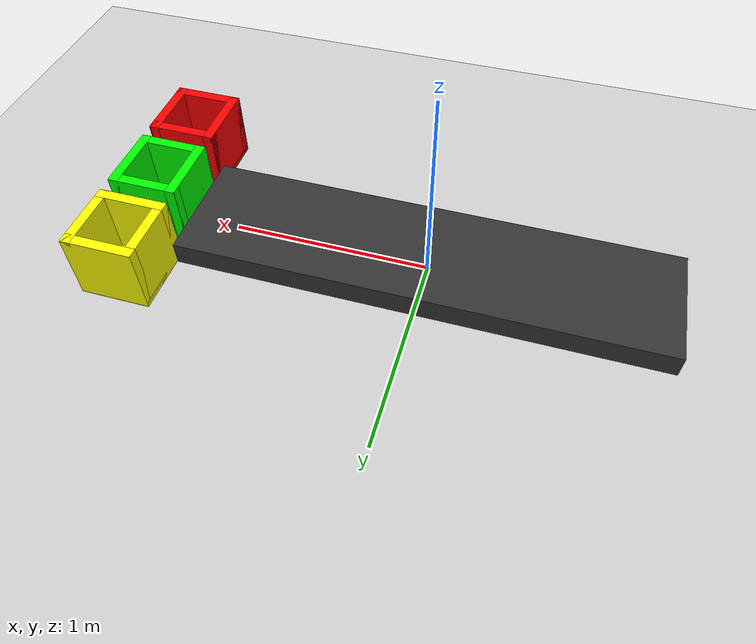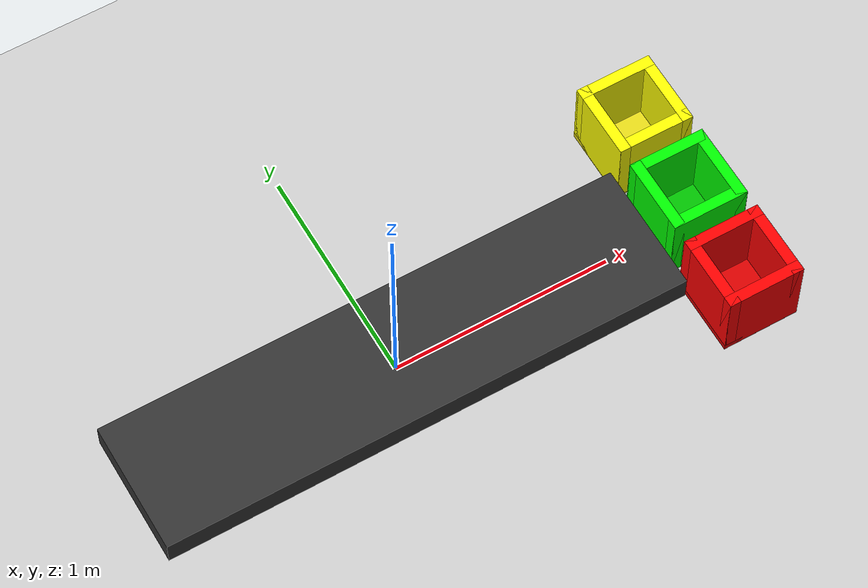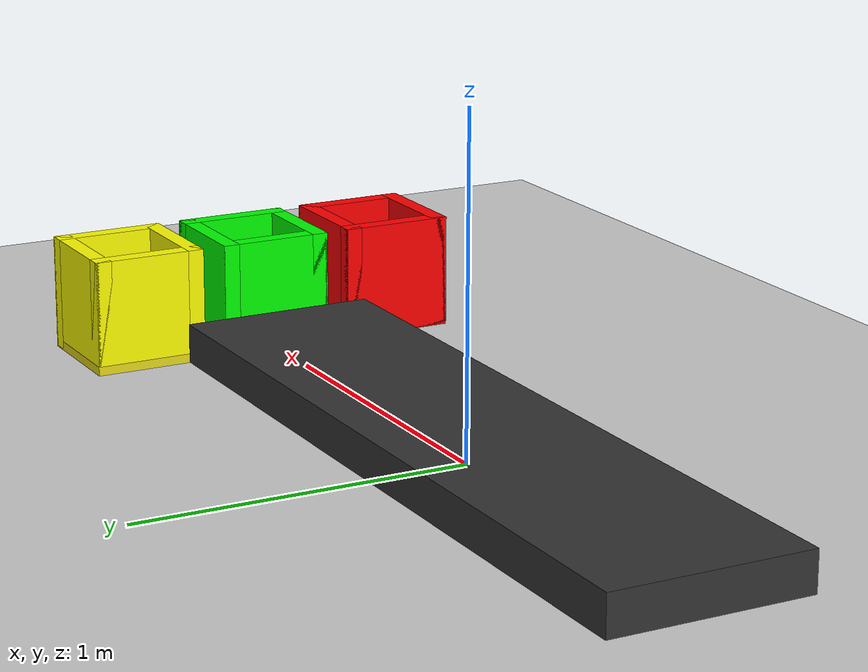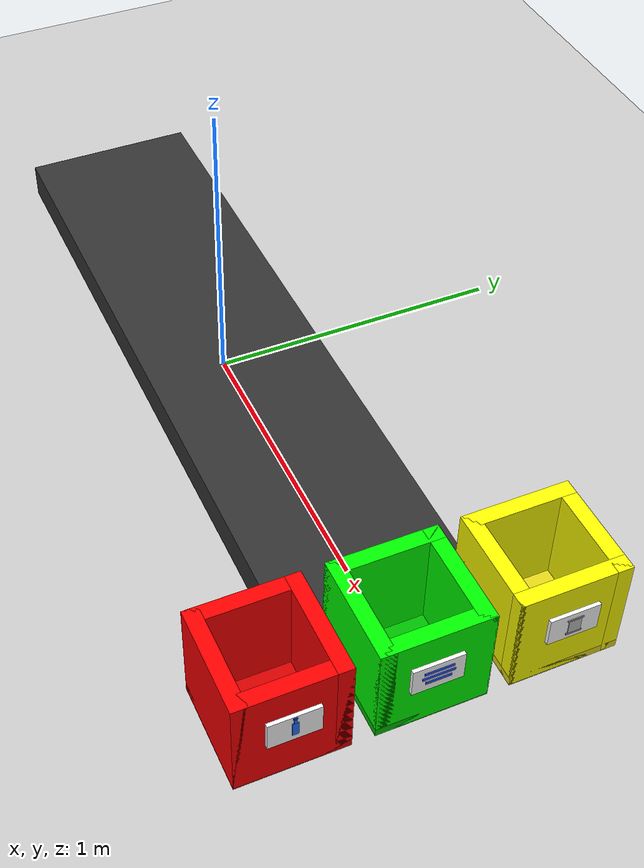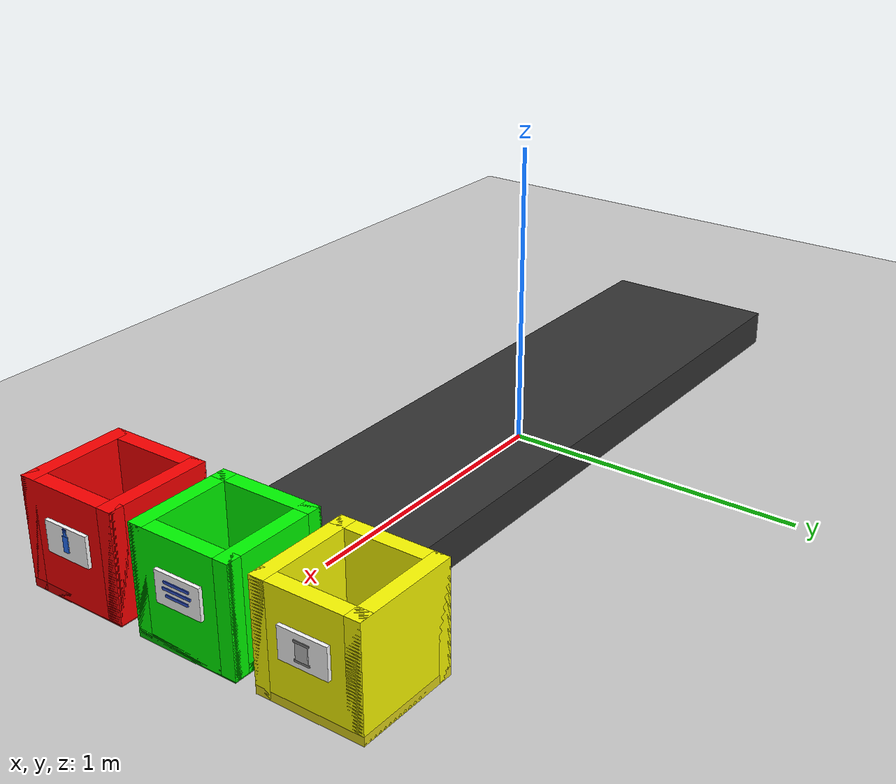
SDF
<?xml version="1.0" ?>
<sdf version="1.6">
  <world name="default">

    <include>
      <uri>model://ground_plane</uri>
    </include>

    <include>
      <uri>model://sun</uri>
    </include>

    <physics type="ode">
      <gravity>0 0 -9.8</gravity>
      <max_step_size>0.001</max_step_size>
      <real_time_factor>1</real_time_factor>
      <real_time_update_rate>1000</real_time_update_rate>
    </physics>

    <!-- Conveyor -->
    <model name="ws_conveyor_belt">
      <static>true</static>
      <pose>0 0 0.06 0 0 0</pose>

      <link name="belt">
        <collision name="collision">
          <geometry>
            <box>
              <size>2.4 0.6 0.12</size>
            </box>
          </geometry>
        </collision>

        <visual name="visual">
          <geometry>
            <box>
              <size>2.4 0.6 0.12</size>
            </box>
          </geometry>
          <material>
            <ambient>0.2 0.2 0.2 1</ambient>
            <diffuse>0.2 0.2 0.2 1</diffuse>
          </material>
        </visual>
      </link>

      <plugin name="conveyor_motion_plugin" filename="libconveyor_motion_plugin.so">
        <belt_center>0 0 0.18</belt_center>
        <belt_size>2.4 0.6 0.12</belt_size>
        <belt_speed>0.22</belt_speed>
        <top_margin>0.20</top_margin>
        <min_object_z>0.11</min_object_z>
      </plugin>
    </model>

    <!-- RED BIN : plastic -->
    <model name="trash_bin_red">
      <static>true</static>
      <pose>1.38 -0.42 0 0 0 0</pose>

      <link name="base">
        <collision name="base_collision">
          <geometry>
            <box><size>0.35 0.35 0.05</size></box>
          </geometry>
        </collision>
        <visual name="base_visual">
          <geometry>
            <box><size>0.35 0.35 0.05</size></box>
          </geometry>
          <material>
            <ambient>0.85 0.0 0.0 1</ambient>
            <diffuse>0.85 0.0 0.0 1</diffuse>
          </material>
        </visual>
      </link>

      <link name="wall_left">
        <pose>0 -0.15 0.175 0 0 0</pose>
        <collision name="collision">
          <geometry><box><size>0.35 0.05 0.35</size></box></geometry>
        </collision>
        <visual name="visual">
          <geometry><box><size>0.35 0.05 0.35</size></box></geometry>
          <material>
            <ambient>1 0 0 1</ambient>
            <diffuse>1 0 0 1</diffuse>
          </material>
        </visual>
      </link>

      <link name="wall_right">
        <pose>0 0.15 0.175 0 0 0</pose>
        <collision name="collision">
          <geometry><box><size>0.35 0.05 0.35</size></box></geometry>
        </collision>
        <visual name="visual">
          <geometry><box><size>0.35 0.05 0.35</size></box></geometry>
          <material>
            <ambient>1 0 0 1</ambient>
            <diffuse>1 0 0 1</diffuse>
          </material>
        </visual>
      </link>

      <link name="wall_back">
        <pose>-0.15 0 0.175 0 0 0</pose>
        <collision name="collision">
          <geometry><box><size>0.05 0.35 0.35</size></box></geometry>
        </collision>
        <visual name="visual">
          <geometry><box><size>0.05 0.35 0.35</size></box></geometry>
          <material>
            <ambient>1 0 0 1</ambient>
            <diffuse>1 0 0 1</diffuse>
          </material>
        </visual>
      </link>

      <link name="wall_front">
        <pose>0.15 0 0.175 0 0 0</pose>
        <collision name="collision">
          <geometry><box><size>0.05 0.35 0.35</size></box></geometry>
        </collision>
        <visual name="visual">
          <geometry><box><size>0.05 0.35 0.35</size></box></geometry>
          <material>
            <ambient>1 0 0 1</ambient>
            <diffuse>1 0 0 1</diffuse>
          </material>
        </visual>
      </link>

      <!-- Front sign -->
      <link name="front_sign">
        <pose>0.181 0 0.20 0 0 0</pose>

        <visual name="plate">
          <geometry><box><size>0.012 0.16 0.10</size></box></geometry>
          <material>
            <ambient>1 1 1 1</ambient>
            <diffuse>1 1 1 1</diffuse>
          </material>
        </visual>

        <!-- blue bottle icon -->
        <visual name="icon_body">
          <pose>0.008 0 0 0 0 0</pose>
          <geometry><box><size>0.003 0.020 0.050</size></box></geometry>
          <material>
            <ambient>0.15 0.45 1.0 1</ambient>
            <diffuse>0.15 0.45 1.0 1</diffuse>
          </material>
        </visual>

        <visual name="icon_neck">
          <pose>0.008 0 0.032 0 0 0</pose>
          <geometry><box><size>0.003 0.010 0.015</size></box></geometry>
          <material>
            <ambient>0.15 0.45 1.0 1</ambient>
            <diffuse>0.15 0.45 1.0 1</diffuse>
          </material>
        </visual>

        <visual name="icon_cap">
          <pose>0.008 0 0.044 0 0 0</pose>
          <geometry><box><size>0.003 0.012 0.006</size></box></geometry>
          <material>
            <ambient>0.05 0.20 0.70 1</ambient>
            <diffuse>0.05 0.20 0.70 1</diffuse>
          </material>
        </visual>
      </link>
    </model>

    <!-- GREEN BIN : paper -->
    <model name="trash_bin_green">
      <static>true</static>
      <pose>1.38 0.00 0 0 0 0</pose>

      <link name="base">
        <collision name="base_collision">
          <geometry><box><size>0.35 0.35 0.05</size></box></geometry>
        </collision>
        <visual name="base_visual">
          <geometry><box><size>0.35 0.35 0.05</size></box></geometry>
          <material>
            <ambient>0 0.75 0 1</ambient>
            <diffuse>0 0.75 0 1</diffuse>
          </material>
        </visual>
      </link>

      <link name="wall_left">
        <pose>0 -0.15 0.175 0 0 0</pose>
        <collision name="collision">
          <geometry><box><size>0.35 0.05 0.35</size></box></geometry>
        </collision>
        <visual name="visual">
          <geometry><box><size>0.35 0.05 0.35</size></box></geometry>
          <material>
            <ambient>0 1 0 1</ambient>
            <diffuse>0 1 0 1</diffuse>
          </material>
        </visual>
      </link>

      <link name="wall_right">
        <pose>0 0.15 0.175 0 0 0</pose>
        <collision name="collision">
          <geometry><box><size>0.35 0.05 0.35</size></box></geometry>
        </collision>
        <visual name="visual">
          <geometry><box><size>0.35 0.05 0.35</size></box></geometry>
          <material>
            <ambient>0 1 0 1</ambient>
            <diffuse>0 1 0 1</diffuse>
          </material>
        </visual>
      </link>

      <link name="wall_back">
        <pose>-0.15 0 0.175 0 0 0</pose>
        <collision name="collision">
          <geometry><box><size>0.05 0.35 0.35</size></box></geometry>
        </collision>
        <visual name="visual">
          <geometry><box><size>0.05 0.35 0.35</size></box></geometry>
          <material>
            <ambient>0 1 0 1</ambient>
            <diffuse>0 1 0 1</diffuse>
          </material>
        </visual>
      </link>

      <link name="wall_front">
        <pose>0.15 0 0.175 0 0 0</pose>
        <collision name="collision">
          <geometry><box><size>0.05 0.35 0.35</size></box></geometry>
        </collision>
        <visual name="visual">
          <geometry><box><size>0.05 0.35 0.35</size></box></geometry>
          <material>
            <ambient>0 1 0 1</ambient>
            <diffuse>0 1 0 1</diffuse>
          </material>
        </visual>
      </link>

      <!-- Front sign -->
      <link name="front_sign">
        <pose>0.181 0 0.20 0 0 0</pose>

        <visual name="plate">
          <geometry><box><size>0.012 0.16 0.10</size></box></geometry>
          <material>
            <ambient>1 1 1 1</ambient>
            <diffuse>1 1 1 1</diffuse>
          </material>
        </visual>

        <!-- paper lines -->
        <visual name="line1">
          <pose>0.008 0 0.025 0 0 0</pose>
          <geometry><box><size>0.003 0.090 0.008</size></box></geometry>
          <material>
            <ambient>0.20 0.35 0.90 1</ambient>
            <diffuse>0.20 0.35 0.90 1</diffuse>
          </material>
        </visual>

        <visual name="line2">
          <pose>0.008 0 0.005 0 0 0</pose>
          <geometry><box><size>0.003 0.100 0.008</size></box></geometry>
          <material>
            <ambient>0.20 0.35 0.90 1</ambient>
            <diffuse>0.20 0.35 0.90 1</diffuse>
          </material>
        </visual>

        <visual name="line3">
          <pose>0.008 0 -0.015 0 0 0</pose>
          <geometry><box><size>0.003 0.080 0.008</size></box></geometry>
          <material>
            <ambient>0.20 0.35 0.90 1</ambient>
            <diffuse>0.20 0.35 0.90 1</diffuse>
          </material>
        </visual>
      </link>
    </model>

    <!-- YELLOW BIN : metal -->
    <model name="trash_bin_yellow">
      <static>true</static>
      <pose>1.38 0.42 0 0 0 0</pose>

      <link name="base">
        <collision name="base_collision">
          <geometry><box><size>0.35 0.35 0.05</size></box></geometry>
        </collision>
        <visual name="base_visual">
          <geometry><box><size>0.35 0.35 0.05</size></box></geometry>
          <material>
            <ambient>0.9 0.85 0.1 1</ambient>
            <diffuse>0.9 0.85 0.1 1</diffuse>
          </material>
        </visual>
      </link>

      <link name="wall_left">
        <pose>0 -0.15 0.175 0 0 0</pose>
        <collision name="collision">
          <geometry><box><size>0.35 0.05 0.35</size></box></geometry>
        </collision>
        <visual name="visual">
          <geometry><box><size>0.35 0.05 0.35</size></box></geometry>
          <material>
            <ambient>1 1 0 1</ambient>
            <diffuse>1 1 0 1</diffuse>
          </material>
        </visual>
      </link>

      <link name="wall_right">
        <pose>0 0.15 0.175 0 0 0</pose>
        <collision name="collision">
          <geometry><box><size>0.35 0.05 0.35</size></box></geometry>
        </collision>
        <visual name="visual">
          <geometry><box><size>0.35 0.05 0.35</size></box></geometry>
          <material>
            <ambient>1 1 0 1</ambient>
            <diffuse>1 1 0 1</diffuse>
          </material>
        </visual>
      </link>

      <link name="wall_back">
        <pose>-0.15 0 0.175 0 0 0</pose>
        <collision name="collision">
          <geometry><box><size>0.05 0.35 0.35</size></box></geometry>
        </collision>
        <visual name="visual">
          <geometry><box><size>0.05 0.35 0.35</size></box></geometry>
          <material>
            <ambient>1 1 0 1</ambient>
            <diffuse>1 1 0 1</diffuse>
          </material>
        </visual>
      </link>

      <link name="wall_front">
        <pose>0.15 0 0.175 0 0 0</pose>
        <collision name="collision">
          <geometry><box><size>0.05 0.35 0.35</size></box></geometry>
        </collision>
        <visual name="visual">
          <geometry><box><size>0.05 0.35 0.35</size></box></geometry>
          <material>
            <ambient>1 1 0 1</ambient>
            <diffuse>1 1 0 1</diffuse>
          </material>
        </visual>
      </link>

      <!-- Front sign -->
      <link name="front_sign">
        <pose>0.181 0 0.20 0 0 0</pose>

        <visual name="plate">
          <geometry><box><size>0.012 0.16 0.10</size></box></geometry>
          <material>
            <ambient>1 1 1 1</ambient>
            <diffuse>1 1 1 1</diffuse>
          </material>
        </visual>

        <!-- can icon -->
        <visual name="can_body">
          <pose>0.008 0 0 0 0 0</pose>
          <geometry><box><size>0.003 0.040 0.050</size></box></geometry>
          <material>
            <ambient>0.70 0.70 0.70 1</ambient>
            <diffuse>0.75 0.75 0.75 1</diffuse>
          </material>
        </visual>

        <visual name="can_top">
          <pose>0.008 0 0.028 0 0 0</pose>
          <geometry><box><size>0.003 0.050 0.006</size></box></geometry>
          <material>
            <ambient>0.55 0.55 0.55 1</ambient>
            <diffuse>0.60 0.60 0.60 1</diffuse>
          </material>
        </visual>

        <visual name="can_bottom">
          <pose>0.008 0 -0.028 0 0 0</pose>
          <geometry><box><size>0.003 0.050 0.006</size></box></geometry>
          <material>
            <ambient>0.55 0.55 0.55 1</ambient>
            <diffuse>0.60 0.60 0.60 1</diffuse>
          </material>
        </visual>
      </link>
    </model>

    <!-- Top camera -->
    <model name="top_camera">
      <static>true</static>
      <pose>0 0 2.5 0 1.57 0</pose>

      <link name="link">
        <sensor name="camera_sensor" type="camera">
          <always_on>true</always_on>
          <update_rate>30</update_rate>

          <camera>
            <horizontal_fov>1.396</horizontal_fov>
            <image>
              <width>1280</width>
              <height>720</height>
            </image>
          </camera>

          <plugin name="camera_controller" filename="libgazebo_ros_camera.so">
            <cameraName>top_camera</cameraName>
            <imageTopicName>image_raw</imageTopicName>
            <cameraInfoTopicName>camera_info</cameraInfoTopicName>
            <frameName>top_camera_link</frameName>
          </plugin>
        </sensor>
      </link>
    </model>

  </world>
</sdf>
